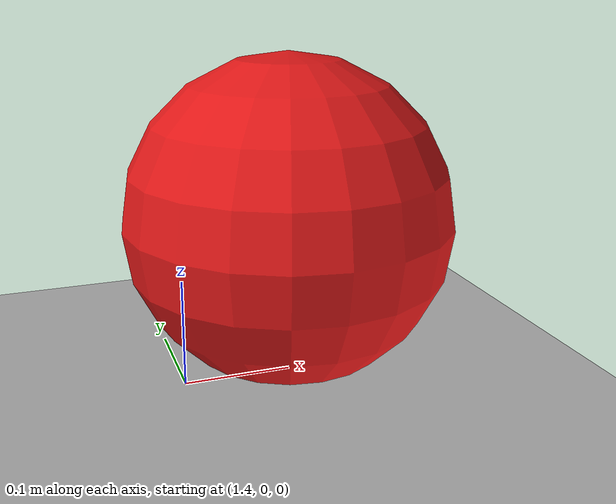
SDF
<?xml version="1.0" ?>
<sdf version="1.8">
  <world name="vision_bench">

    <physics name="1ms" type="ignored">
      <max_step_size>0.002</max_step_size>
      <real_time_factor>1.0</real_time_factor>
    </physics>

    <plugin filename="ignition-gazebo-physics-system"
            name="gz::sim::systems::Physics"/>
    <plugin filename="ignition-gazebo-user-commands-system"
            name="gz::sim::systems::UserCommands"/>
    <plugin filename="ignition-gazebo-scene-broadcaster-system"
            name="gz::sim::systems::SceneBroadcaster"/>
    <plugin filename="ignition-gazebo-sensors-system"
            name="gz::sim::systems::Sensors">
      <render_engine>ogre2</render_engine>
    </plugin>

    <light type="directional" name="sun">
      <cast_shadows>true</cast_shadows>
      <pose>0 0 10 0 0 0</pose>
      <diffuse>0.8 0.8 0.8 1</diffuse>
      <specular>0.2 0.2 0.2 1</specular>
      <attenuation>
        <range>1000</range>
        <constant>0.9</constant>
        <linear>0.01</linear>
        <quadratic>0.001</quadratic>
      </attenuation>
      <direction>-0.5 0.1 -0.9</direction>
    </light>

    <model name="ground_plane">
      <static>true</static>
      <pose>0 0 -0.05 0 0 0</pose>
      <link name="link">
        <collision name="collision">
          <geometry>
            <box>
              <size>20 20 0.1</size>
            </box>
          </geometry>
        </collision>
        <visual name="visual">
          <geometry>
            <box>
              <size>20 20 0.1</size>
            </box>
          </geometry>
          <material>
            <ambient>0.7 0.7 0.7 1</ambient>
            <diffuse>0.7 0.7 0.7 1</diffuse>
            <specular>0.3 0.3 0.3 1</specular>
          </material>
        </visual>
      </link>
    </model>

    <!-- moving target (teleported by target_director.py) -->
    <model name="target_ball">
      <pose>1.5 0 0.15 0 0 0</pose>
      <link name="link">
        <inertial>
          <mass>0.05</mass>
          <inertia>
            <ixx>0.00045</ixx>
            <iyy>0.00045</iyy>
            <izz>0.00045</izz>
          </inertia>
        </inertial>
        <collision name="collision">
          <geometry>
            <sphere>
              <radius>0.15</radius>
            </sphere>
          </geometry>
        </collision>
        <visual name="visual">
          <geometry>
            <sphere>
              <radius>0.15</radius>
            </sphere>
          </geometry>
          <material>
            <ambient>0.9 0.1 0.1 1</ambient>
            <diffuse>0.9 0.1 0.1 1</diffuse>
            <specular>0.2 0.2 0.2 1</specular>
          </material>
        </visual>
      </link>
    </model>

  </world>
</sdf>
